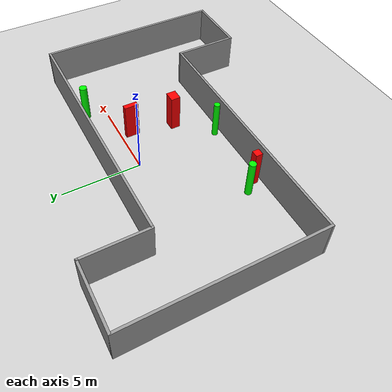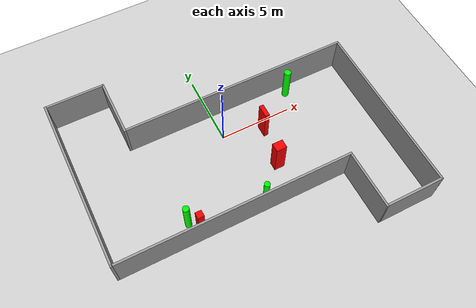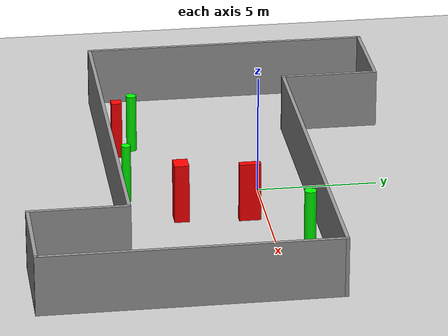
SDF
<sdf version="1.7">
 <world name="default">
  <light name="sun" type="directional">
   <pose>0 0 10 0 -0 0</pose>
   <diffuse>0.8 0.8 0.8 1</diffuse>
   <specular>0.2 0.2 0.2 1</specular>
   <attenuation>
    <range>1000</range>
    <constant>0.9</constant>
    <linear>0.01</linear>
    <quadratic>0.001</quadratic>
   </attenuation>
   <direction>-0.5 0.1 -0.9</direction>
   <spot><inner_angle>0</inner_angle><outer_angle>0</outer_angle><falloff>0</falloff></spot>
  </light>
  <model name="ground_plane">
   <static>1</static>
   <link name="link">
    <collision name="collision">
     <geometry><plane><normal>0 0 1</normal><size>100 100</size></plane></geometry>
     <surface>
      <contact><collide_bitmask>65535</collide_bitmask></contact>
      <friction><ode><mu>100</mu><mu2>50</mu2></ode></friction>
     </surface>
    </collision>
    <visual name="visual">
     <cast_shadows>0</cast_shadows>
     <geometry><plane><normal>0 0 1</normal><size>100 100</size></plane></geometry>
     <material>
      <script><uri>file://media/materials/scripts/gazebo.material</uri><name>Gazebo/Grey</name></script>
     </material>
    </visual>
   </link>
  </model>
  <gravity>0 0 -9.8</gravity>
  <magnetic_field>6e-06 2.3e-05 -4.2e-05</magnetic_field>
  <atmosphere type="adiabatic"/>
  <physics type="ode">
   <max_step_size>0.001</max_step_size>
   <real_time_factor>1</real_time_factor>
   <real_time_update_rate>1000</real_time_update_rate>
  </physics>
  <scene><ambient>0.4 0.4 0.4 1</ambient><background>0.7 0.7 0.7 1</background><shadows>1</shadows></scene>
  <spherical_coordinates>
   <surface_model>EARTH_WGS84</surface_model>
   <latitude_deg>0</latitude_deg>
   <longitude_deg>0</longitude_deg>
   <elevation>0</elevation>
   <heading_deg>0</heading_deg>
  </spherical_coordinates>
  <model name="my_base_walls">
   <link name="Wall_13">
    <collision name="Wall_13_Collision">
     <geometry><box><size>12.15 0.15 2.5</size></box></geometry>
     <pose>0 0 1.25 0 -0 0</pose>
    </collision>
    <visual name="Wall_13_Visual">
     <pose>0 0 1.25 0 -0 0</pose>
     <geometry><box><size>12.15 0.15 2.5</size></box></geometry>
     <material>
      <script><uri>file://media/materials/scripts/gazebo.material</uri><name>Gazebo/Grey</name></script>
      <ambient>1 1 1 1</ambient>
     </material>
     <meta><layer>0</layer></meta>
    </visual>
    <pose>10 -2 0 0 -0 1.5708</pose>
   </link>
   <link name="Wall_15">
    <collision name="Wall_15_Collision">
     <geometry><box><size>16.15 0.15 2.5</size></box></geometry>
     <pose>0 0 1.25 0 -0 0</pose>
    </collision>
    <visual name="Wall_15_Visual">
     <pose>0 0 1.25 0 -0 0</pose>
     <geometry><box><size>16.15 0.15 2.5</size></box></geometry>
     <material>
      <script><uri>file://media/materials/scripts/gazebo.material</uri><name>Gazebo/Grey</name></script>
      <ambient>1 1 1 1</ambient>
     </material>
     <meta><layer>0</layer></meta>
    </visual>
    <pose>2 4 0 0 -0 3.14159</pose>
   </link>
   <link name="Wall_17">
    <collision name="Wall_17_Collision">
     <geometry><box><size>4.15 0.15 2.5</size></box></geometry>
     <pose>0 0 1.25 0 -0 0</pose>
    </collision>
    <visual name="Wall_17_Visual">
     <pose>0 0 1.25 0 -0 0</pose>
     <geometry><box><size>4.15 0.15 2.5</size></box></geometry>
     <material>
      <script><uri>file://media/materials/scripts/gazebo.material</uri><name>Gazebo/Grey</name></script>
      <ambient>1 1 1 1</ambient>
     </material>
     <meta><layer>0</layer></meta>
    </visual>
    <pose>6 -6 0 0 -0 -1.5708</pose>
   </link>
   <link name="Wall_19">
    <collision name="Wall_19_Collision">
     <geometry><box><size>12.15 0.15 2.5</size></box></geometry>
     <pose>0 0 1.25 0 -0 0</pose>
    </collision>
    <visual name="Wall_19_Visual">
     <pose>0 0 1.25 0 -0 0</pose>
     <geometry><box><size>12.15 0.15 2.5</size></box></geometry>
     <material>
      <script><uri>file://media/materials/scripts/gazebo.material</uri><name>Gazebo/Grey</name></script>
      <ambient>1 1 1 1</ambient>
     </material>
     <meta><layer>0</layer></meta>
    </visual>
    <pose>-10 2 0 0 -0 1.5708</pose>
   </link>
   <link name="Wall_21">
    <collision name="Wall_21_Collision">
     <geometry><box><size>4.15 0.15 2.5</size></box></geometry>
     <pose>0 0 1.25 0 -0 0</pose>
    </collision>
    <visual name="Wall_21_Visual">
     <pose>0 0 1.25 0 -0 0</pose>
     <geometry><box><size>4.15 0.15 2.5</size></box></geometry>
     <material>
      <script><uri>file://media/materials/scripts/gazebo.material</uri><name>Gazebo/Grey</name></script>
      <ambient>1 1 1 1</ambient>
     </material>
     <meta><layer>0</layer></meta>
    </visual>
    <pose>-8 8 0 0 -0 0</pose>
   </link>
   <link name="Wall_23">
    <collision name="Wall_23_Collision">
     <geometry><box><size>4.15 0.15 2.5</size></box></geometry>
     <pose>0 0 1.25 0 -0 0</pose>
    </collision>
    <visual name="Wall_23_Visual">
     <pose>0 0 1.25 0 -0 0</pose>
     <geometry><box><size>4.15 0.15 2.5</size></box></geometry>
     <material>
      <script><uri>file://media/materials/scripts/gazebo.material</uri><name>Gazebo/Grey</name></script>
      <ambient>1 1 1 1</ambient>
     </material>
     <meta><layer>0</layer></meta>
    </visual>
    <pose>-6 6 0 0 -0 -1.5708</pose>
   </link>
   <link name="Wall_25">
    <collision name="Wall_25_Collision">
     <geometry><box><size>4.15 0.15 2.5</size></box></geometry>
     <pose>0 0 1.25 0 -0 0</pose>
    </collision>
    <visual name="Wall_25_Visual">
     <pose>0 0 1.25 0 -0 0</pose>
     <geometry><box><size>4.15 0.15 2.5</size></box></geometry>
     <material>
      <script><uri>file://media/materials/scripts/gazebo.material</uri><name>Gazebo/Grey</name></script>
      <ambient>1 1 1 1</ambient>
     </material>
     <meta><layer>0</layer></meta>
    </visual>
    <pose>8 -8 0 0 -0 0</pose>
   </link>
   <link name="Wall_9">
    <collision name="Wall_9_Collision">
     <geometry><box><size>16.15 0.15 2.5</size></box></geometry>
     <pose>0 0 1.25 0 -0 0</pose>
    </collision>
    <visual name="Wall_9_Visual">
     <pose>0 0 1.25 0 -0 0</pose>
     <geometry><box><size>16.15 0.15 2.5</size></box></geometry>
     <material>
      <script><uri>file://media/materials/scripts/gazebo.material</uri><name>Gazebo/Grey</name></script>
      <ambient>1 1 1 1</ambient>
     </material>
     <meta><layer>0</layer></meta>
    </visual>
    <pose>-2 -4 0 0 -0 3.14159</pose>
   </link>
   <static>1</static>
   <pose>-0 -2 0 0 -0 0</pose>
  </model>
  <model name="cylinder1">
   <static>1</static>
   <link name="link">
    <inertial>
     <mass>1</mass>
     <inertia><ixx>0.5</ixx><ixy>0</ixy><ixz>0</ixz><iyy>0.5</iyy><iyz>0</iyz><izz>1</izz></inertia>
    </inertial>
    <collision name="collision">
     <geometry><cylinder><radius>0.19311423879312933</radius><length>2.5</length></cylinder></geometry>
    </collision>
    <visual name="visual">
     <geometry><cylinder><radius>0.19311423879312933</radius><length>2.5</length></cylinder></geometry>
     <material>
      <ambient>0 1 0 1</ambient>
      <diffuse>0 1 0 1</diffuse>
      <specular>0.1 0.1 0.1 1</specular>
      <emissive>0 0 0 0</emissive>
     </material>
    </visual>
   </link>
   <pose>0.298943249633858 -5.504093696578735 1.25 0 0 0</pose>
  </model>
  <model name="cylinder2">
   <static>1</static>
   <link name="link">
    <inertial>
     <mass>1</mass>
     <inertia><ixx>0.5</ixx><ixy>0</ixy><ixz>0</ixz><iyy>0.5</iyy><iyz>0</iyz><izz>1</izz></inertia>
    </inertial>
    <collision name="collision">
     <geometry><cylinder><radius>0.21631204866121978</radius><length>2.5</length></cylinder></geometry>
    </collision>
    <visual name="visual">
     <geometry><cylinder><radius>0.21631204866121978</radius><length>2.5</length></cylinder></geometry>
     <material>
      <ambient>0 1 0 1</ambient>
      <diffuse>0 1 0 1</diffuse>
      <specular>0.1 0.1 0.1 1</specular>
      <emissive>0 0 0 0</emissive>
     </material>
    </visual>
   </link>
   <pose>-4.786576914287991 -4.739306827759428 1.25 0 0 0</pose>
  </model>
  <model name="cylinder3">
   <static>1</static>
   <link name="link">
    <inertial>
     <mass>1</mass>
     <inertia><ixx>0.5</ixx><ixy>0</ixy><ixz>0</ixz><iyy>0.5</iyy><iyz>0</iyz><izz>1</izz></inertia>
    </inertial>
    <collision name="collision">
     <geometry><cylinder><radius>0.24144419524080657</radius><length>2.5</length></cylinder></geometry>
    </collision>
    <visual name="visual">
     <geometry><cylinder><radius>0.24144419524080657</radius><length>2.5</length></cylinder></geometry>
     <material>
      <ambient>0 1 0 1</ambient>
      <diffuse>0 1 0 1</diffuse>
      <specular>0.1 0.1 0.1 1</specular>
      <emissive>0 0 0 0</emissive>
     </material>
    </visual>
   </link>
   <pose>5.588213505148522 1.282639229244455 1.25 0 0 0</pose>
  </model>
  <model name="box1">
   <static>1</static>
   <link name="link">
    <inertial>
     <mass>1</mass>
     <inertia><ixx>0.083</ixx><ixy>0</ixy><ixz>0</ixz><iyy>0.083</iyy><iyz>0</iyz><izz>0.083</izz></inertia>
    </inertial>
    <collision name="collision">
     <geometry><box><size>0.30222486699076917 0.8856513578191347 2.5</size></box></geometry>
    </collision>
    <visual name="visual">
     <geometry><box><size>0.30222486699076917 0.8856513578191347 2.5</size></box></geometry>
     <material>
      <ambient>1 0 0 1</ambient>
      <diffuse>1 0 0 1</diffuse>
      <specular>0.1 0.1 0.1 1</specular>
      <emissive>0 0 0 0</emissive>
     </material>
    </visual>
    <sensor name="my_contact" type="contact">
     <contact><collision>box_collision</collision><topic>__default_topic__</topic></contact>
    </sensor>
   </link>
   <pose>2.691902142365123 -0.7260912397134414 1.25 0 0 0</pose>
  </model>
  <model name="box2">
   <static>1</static>
   <link name="link">
    <inertial>
     <mass>1</mass>
     <inertia><ixx>0.083</ixx><ixy>0</ixy><ixz>0</ixz><iyy>0.083</iyy><iyz>0</iyz><izz>0.083</izz></inertia>
    </inertial>
    <collision name="collision">
     <geometry><box><size>0.4295146760433466 0.4359633006813003 2.5</size></box></geometry>
    </collision>
    <visual name="visual">
     <geometry><box><size>0.4295146760433466 0.4359633006813003 2.5</size></box></geometry>
     <material>
      <ambient>1 0 0 1</ambient>
      <diffuse>1 0 0 1</diffuse>
      <specular>0.1 0.1 0.1 1</specular>
      <emissive>0 0 0 0</emissive>
     </material>
    </visual>
    <sensor name="my_contact" type="contact">
     <contact><collision>box_collision</collision><topic>__default_topic__</topic></contact>
    </sensor>
   </link>
   <pose>-4.209680580525667 -5.436420305632535 1.25 0 0 0</pose>
  </model>
  <model name="box3">
   <static>1</static>
   <link name="link">
    <inertial>
     <mass>1</mass>
     <inertia><ixx>0.083</ixx><ixy>0</ixy><ixz>0</ixz><iyy>0.083</iyy><iyz>0</iyz><izz>0.083</izz></inertia>
    </inertial>
    <collision name="collision">
     <geometry><box><size>0.7146772343629979 0.6063638685877166 2.5</size></box></geometry>
    </collision>
    <visual name="visual">
     <geometry><box><size>0.7146772343629979 0.6063638685877166 2.5</size></box></geometry>
     <material>
      <ambient>1 0 0 1</ambient>
      <diffuse>1 0 0 1</diffuse>
      <specular>0.1 0.1 0.1 1</specular>
      <emissive>0 0 0 0</emissive>
     </material>
    </visual>
    <sensor name="my_contact" type="contact">
     <contact><collision>box_collision</collision><topic>__default_topic__</topic></contact>
    </sensor>
   </link>
   <pose>2.2897937119944007 -3.4919214774334204 1.25 0 0 0</pose>
  </model>
 </world>
</sdf>
